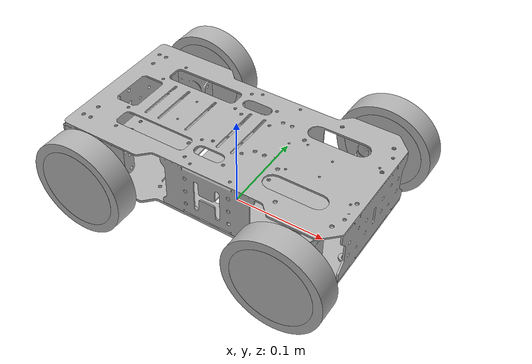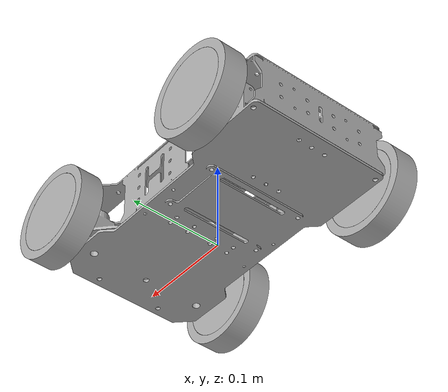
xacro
<?xml version="1.0"?>
<robot name="assembly_chasis" xmlns:xacro="http://www.ros.org/wiki/xacro">

  <xacro:include filename="$(find jetrover_description)/urdf/acker/materials.xacro" />
  <xacro:include filename="$(find jetrover_description)/urdf/acker/assembly_chasis.ros2control" />
  <xacro:include filename="$(find jetrover_description)/urdf/acker/assembly_chasis.gazebo" />
  <link name="base_link">
    <inertial>
      <origin xyz="-0.006798258215834958 0.0012157481048894814 0.03342103979861439" rpy="0 0 0" />
      <mass value="1.1948281829220548" />
      <inertia ixx="0.003173" iyy="0.010286" izz="0.013229" ixy="0.000139" iyz="-3.2e-05"
        ixz="0.000327" />
    </inertial>
    <visual>
      <origin xyz="0 0 0" rpy="0 0 0" />
      <geometry>
        <mesh filename="file://$(find jetrover_description)/meshes/acker/base_link.stl"
          scale="0.001 0.001 0.001" />
      </geometry>
      <material name="silver" />
    </visual>
    <collision>
      <origin xyz="0 0 0" rpy="0 0 0" />
      <geometry>
        <mesh filename="file://$(find jetrover_description)/meshes/acker/base_link.stl"
          scale="0.001 0.001 0.001" />
      </geometry>
    </collision>
  </link>

  <link name="base_green_link_1">
    <inertial>
      <origin xyz="-0.139137 -0.036613 -0.031235" rpy="0 0 0" />
      <mass value="0.0" />
      <inertia ixx="0.0" iyy="0.0" izz="0.0" ixy="0.0" iyz="0.0" ixz="0.0" />
    </inertial>
    <visual>
      <origin xyz="-0.139137 -0.036613 -0.031235" rpy="0 0 0" />
      <geometry>
        <mesh filename="file://$(find jetrover_description)/meshes/acker/base_green_link_1.stl"
          scale="0.001 0.001 0.001" />
      </geometry>
      <material name="silver" />
    </visual>
    <collision>
      <origin xyz="-0.139137 -0.036613 -0.031235" rpy="0 0 0" />
      <geometry>
        <mesh filename="file://$(find jetrover_description)/meshes/acker/base_green_link_1.stl"
          scale="0.001 0.001 0.001" />
      </geometry>
    </collision>
  </link>

  <link name="front_left_wheel_tire_1">
    <inertial>
      <origin xyz="5.640824710106962e-07 0.012800126968121384 -4.6788513696771616e-07" rpy="0 0 0" />
      <mass value="0.06316889720600809" />
      <inertia ixx="7.1e-05" iyy="0.000134" izz="7.1e-05" ixy="0.0" iyz="-0.0" ixz="-0.0" />
    </inertial>
    <visual>
      <origin xyz="-0.111171 -0.091924 -0.052595" rpy="0 0 0" />
      <geometry>
        <mesh
          filename="file://$(find jetrover_description)/meshes/acker/front_left_wheel_tire_1.stl"
          scale="0.001 0.001 0.001" />
      </geometry>
      <material name="silver" />
    </visual>
    <collision>
      <origin xyz="-0.111171 -0.091924 -0.052595" rpy="0 0 0" />
      <geometry>
        <mesh
          filename="file://$(find jetrover_description)/meshes/acker/front_left_wheel_tire_1.stl"
          scale="0.001 0.001 0.001" />
      </geometry>
    </collision>
  </link>

  <link name="front_left_wheel_link_1">
    <inertial>
      <origin xyz="5.640824710106962e-07 0.012800126968121384 -4.678851369468995e-07" rpy="0 0 0" />
      <mass value="1.0742550415244152" />
      <inertia ixx="0.000516" iyy="0.000914" izz="0.000516" ixy="0.0" iyz="-0.0" ixz="-0.0" />
    </inertial>
    <visual>
      <origin xyz="-0.111171 -0.091924 -0.052595" rpy="0 0 0" />
      <geometry>
        <mesh
          filename="file://$(find jetrover_description)/meshes/acker/front_left_wheel_link_1.stl"
          scale="0.001 0.001 0.001" />
      </geometry>
      <material name="silver" />
    </visual>
    <collision>
      <origin xyz="-0.111171 -0.091924 -0.052595" rpy="0 0 0" />
      <geometry>
        <mesh
          filename="file://$(find jetrover_description)/meshes/acker/front_left_wheel_link_1.stl"
          scale="0.001 0.001 0.001" />
      </geometry>
    </collision>
  </link>

  <link name="front_right_wheel_tire_1">
    <inertial>
      <origin xyz="4.752872217600457e-07 -0.012800057006835924 -3.494061506931212e-07" rpy="0 0 0" />
      <mass value="0.06316889720600809" />
      <inertia ixx="7.1e-05" iyy="0.000134" izz="7.1e-05" ixy="0.0" iyz="0.0" ixz="-0.0" />
    </inertial>
    <visual>
      <origin xyz="-0.111171 0.091924 -0.052595" rpy="0 0 0" />
      <geometry>
        <mesh
          filename="file://$(find jetrover_description)/meshes/acker/front_right_wheel_tire_1.stl"
          scale="0.001 0.001 0.001" />
      </geometry>
      <material name="silver" />
    </visual>
    <collision>
      <origin xyz="-0.111171 0.091924 -0.052595" rpy="0 0 0" />
      <geometry>
        <mesh
          filename="file://$(find jetrover_description)/meshes/acker/front_right_wheel_tire_1.stl"
          scale="0.001 0.001 0.001" />
      </geometry>
    </collision>
  </link>

  <link name="front_right_wheel_link_1">
    <inertial>
      <origin xyz="4.752872217600457e-07 -0.012800057006835924 -3.494061506723045e-07" rpy="0 0 0" />
      <mass value="1.0742550415244152" />
      <inertia ixx="0.000516" iyy="0.000914" izz="0.000516" ixy="0.0" iyz="-0.0" ixz="0.0" />
    </inertial>
    <visual>
      <origin xyz="-0.111171 0.091924 -0.052595" rpy="0 0 0" />
      <geometry>
        <mesh
          filename="file://$(find jetrover_description)/meshes/acker/front_right_wheel_link_1.stl"
          scale="0.001 0.001 0.001" />
      </geometry>
      <material name="silver" />
    </visual>
    <collision>
      <origin xyz="-0.111171 0.091924 -0.052595" rpy="0 0 0" />
      <geometry>
        <mesh
          filename="file://$(find jetrover_description)/meshes/acker/front_right_wheel_link_1.stl"
          scale="0.001 0.001 0.001" />
      </geometry>
    </collision>
  </link>

  <link name="rear_left_wheel_tire_1">
    <inertial>
      <origin xyz="-2.748838707072876e-07 0.012800399382812494 2.4570465088219473e-07" rpy="0 0 0" />
      <mass value="0.06316889720600809" />
      <inertia ixx="7.1e-05" iyy="0.000134" izz="7.1e-05" ixy="0.0" iyz="0.0" ixz="0.0" />
    </inertial>
    <visual>
      <origin xyz="0.102098 -0.091924 -0.054235" rpy="0 0 0" />
      <geometry>
        <mesh filename="file://$(find jetrover_description)/meshes/acker/rear_left_wheel_tire_1.stl"
          scale="0.001 0.001 0.001" />
      </geometry>
      <material name="silver" />
    </visual>
    <collision>
      <origin xyz="0.102098 -0.091924 -0.054235" rpy="0 0 0" />
      <geometry>
        <mesh filename="file://$(find jetrover_description)/meshes/acker/rear_left_wheel_tire_1.stl"
          scale="0.001 0.001 0.001" />
      </geometry>
    </collision>
  </link>

  <link name="rear_left_wheel_link_1">
    <inertial>
      <origin xyz="-2.748838707072876e-07 0.012800399382812494 2.457046509030114e-07" rpy="0 0 0" />
      <mass value="1.0742550415244152" />
      <inertia ixx="0.000516" iyy="0.000914" izz="0.000516" ixy="0.0" iyz="0.0" ixz="0.0" />
    </inertial>
    <visual>
      <origin xyz="0.102098 -0.091924 -0.054235" rpy="0 0 0" />
      <geometry>
        <mesh filename="file://$(find jetrover_description)/meshes/acker/rear_left_wheel_link_1.stl"
          scale="0.001 0.001 0.001" />
      </geometry>
      <material name="silver" />
    </visual>
    <collision>
      <origin xyz="0.102098 -0.091924 -0.054235" rpy="0 0 0" />
      <geometry>
        <mesh filename="file://$(find jetrover_description)/meshes/acker/rear_left_wheel_link_1.stl"
          scale="0.001 0.001 0.001" />
      </geometry>
    </collision>
  </link>

  <link name="rear_right_wheel_tire_1">
    <inertial>
      <origin xyz="-2.748838707072876e-07 -0.012800060845091277 2.4570465088219473e-07" rpy="0 0 0" />
      <mass value="0.06316889720600809" />
      <inertia ixx="7.1e-05" iyy="0.000134" izz="7.1e-05" ixy="0.0" iyz="0.0" ixz="0.0" />
    </inertial>
    <visual>
      <origin xyz="0.102098 0.091924 -0.054235" rpy="0 0 0" />
      <geometry>
        <mesh
          filename="file://$(find jetrover_description)/meshes/acker/rear_right_wheel_tire_1.stl"
          scale="0.001 0.001 0.001" />
      </geometry>
      <material name="silver" />
    </visual>
    <collision>
      <origin xyz="0.102098 0.091924 -0.054235" rpy="0 0 0" />
      <geometry>
        <mesh
          filename="file://$(find jetrover_description)/meshes/acker/rear_right_wheel_tire_1.stl"
          scale="0.001 0.001 0.001" />
      </geometry>
    </collision>
  </link>

  <link name="rear_right_wheel_link_1">
    <inertial>
      <origin xyz="-2.748838707072876e-07 -0.012800060845091277 2.457046509030114e-07" rpy="0 0 0" />
      <mass value="1.0742550415244152" />
      <inertia ixx="0.000516" iyy="0.000914" izz="0.000516" ixy="0.0" iyz="0.0" ixz="0.0" />
    </inertial>
    <visual>
      <origin xyz="0.102098 0.091924 -0.054235" rpy="0 0 0" />
      <geometry>
        <mesh
          filename="file://$(find jetrover_description)/meshes/acker/rear_right_wheel_link_1.stl"
          scale="0.001 0.001 0.001" />
      </geometry>
      <material name="silver" />
    </visual>
    <collision>
      <origin xyz="0.102098 0.091924 -0.054235" rpy="0 0 0" />
      <geometry>
        <mesh
          filename="file://$(find jetrover_description)/meshes/acker/rear_right_wheel_link_1.stl"
          scale="0.001 0.001 0.001" />
      </geometry>
    </collision>
  </link>

  <link name="front_left_sterring_link_1">
    <inertial>
      <origin xyz="-0.0040465918921842176 0.006035056500165253 0.019363639865389158" rpy="0 0 0" />
      <mass value="0.07976552705950153" />
      <inertia ixx="1.9e-05" iyy="2.2e-05" izz="2.6e-05" ixy="-4e-06" iyz="-1e-06" ixz="-3e-06" />
    </inertial>
    <visual>
      <origin xyz="-0.111232 -0.063683 -0.031235" rpy="0 0 0" />
      <geometry>
        <mesh
          filename="file://$(find jetrover_description)/meshes/acker/front_left_sterring_link_1.stl"
          scale="0.001 0.001 0.001" />
      </geometry>
      <material name="silver" />
    </visual>
    <collision>
      <origin xyz="-0.111232 -0.063683 -0.031235" rpy="0 0 0" />
      <geometry>
        <mesh
          filename="file://$(find jetrover_description)/meshes/acker/front_left_sterring_link_1.stl"
          scale="0.001 0.001 0.001" />
      </geometry>
    </collision>
  </link>

  <link name="front_right_steering_link_1">
    <inertial>
      <origin xyz="-0.004058391449346527 -0.006054828705959386 0.019322305399745048" rpy="0 0 0" />
      <mass value="0.07950209290283795" />
      <inertia ixx="1.9e-05" iyy="2.2e-05" izz="2.6e-05" ixy="4e-06" iyz="1e-06" ixz="-3e-06" />
    </inertial>
    <visual>
      <origin xyz="-0.111232 0.063683 -0.031235" rpy="0 0 0" />
      <geometry>
        <mesh
          filename="file://$(find jetrover_description)/meshes/acker/front_right_steering_link_1.stl"
          scale="0.001 0.001 0.001" />
      </geometry>
      <material name="silver" />
    </visual>
    <collision>
      <origin xyz="-0.111232 0.063683 -0.031235" rpy="0 0 0" />
      <geometry>
        <mesh
          filename="file://$(find jetrover_description)/meshes/acker/front_right_steering_link_1.stl"
          scale="0.001 0.001 0.001" />
      </geometry>
    </collision>
  </link>

  <joint name="Rigid 1" type="fixed">
    <origin xyz="0.139137 0.036613 0.031235" rpy="0 0 0" />
    <parent link="base_link" />
    <child link="base_green_link_1" />
  </joint>

  <joint name="front_left_wheel_tire_rigid" type="fixed">
    <origin xyz="0.0 0.0 0.0" rpy="0 0 0" />
    <parent link="front_left_wheel_link_1" />
    <child link="front_left_wheel_tire_1" />
  </joint>

  <joint name="front_left_wheel_joint" type="continuous">
    <origin xyz="-6.1e-05 0.028241 0.02136" rpy="0 0 0" />
    <parent link="front_left_sterring_link_1" />
    <child link="front_left_wheel_link_1" />
    <axis xyz="-7e-06 1.0 9e-06" />
  </joint>

  <joint name="front_right_wheel_tire_rigid" type="fixed">
    <origin xyz="0.0 0.0 0.0" rpy="0 0 0" />
    <parent link="front_right_wheel_link_1" />
    <child link="front_right_wheel_tire_1" />
  </joint>

  <joint name="front_right_wheel_joint" type="continuous">
    <origin xyz="-6.1e-05 -0.028241 0.02136" rpy="0 0 0" />
    <parent link="front_right_steering_link_1" />
    <child link="front_right_wheel_link_1" />
    <axis xyz="0.0 1.0 0.0" />
  </joint>

  <joint name="rear_left_wheel_tire_rigid" type="fixed">
    <origin xyz="0.0 0.0 0.0" rpy="0 0 0" />
    <parent link="rear_left_wheel_link_1" />
    <child link="rear_left_wheel_tire_1" />
  </joint>

  <joint name="rear_left_wheel_joint" type="continuous">
    <origin xyz="-0.102098 0.091924 0.054235" rpy="0 0 0" />
    <parent link="base_link" />
    <child link="rear_left_wheel_link_1" />
    <axis xyz="0.0 1.0 0.0" />
  </joint>

  <joint name="rear_right_wheel_tire_rigid" type="fixed">
    <origin xyz="0.0 0.0 0.0" rpy="0 0 0" />
    <parent link="rear_right_wheel_link_1" />
    <child link="rear_right_wheel_tire_1" />
  </joint>

  <joint name="rear_right_wheel_joint" type="continuous">
    <origin xyz="-0.102098 -0.091924 0.054235" rpy="0 0 0" />
    <parent link="base_link" />
    <child link="rear_right_wheel_link_1" />
    <axis xyz="-0.0 1.0 0.0" />
  </joint>

  <joint name="front_left_steering_joint" type="revolute">
    <origin xyz="0.111232 0.063683 0.031235" rpy="0 0 0" />
    <parent link="base_link" />
    <child link="front_left_sterring_link_1" />
    <axis xyz="0.0 0.0 1.0" />
    <limit upper="-0.401426" lower="0.401426" effort="100" velocity="100" />
  </joint>

  <joint name="front_right_steering_joint" type="revolute">
    <origin xyz="0.111232 -0.063683 0.031235" rpy="0 0 0" />
    <parent link="base_link" />
    <child link="front_right_steering_link_1" />
    <axis xyz="0.0 0.0 1.0" />
    <limit upper="-0.401426" lower="0.401426" effort="100" velocity="100" />
  </joint>

</robot>

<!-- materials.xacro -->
<robot name="assembly_chasis" xmlns:xacro="http://www.ros.org/wiki/xacro" >

<material name="silver">
  <color rgba="0.700 0.700 0.700 1.000"/>
</material>

</robot>

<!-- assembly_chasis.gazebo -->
<robot name="assembly_chasis" xmlns:xacro="http://www.ros.org/wiki/xacro">

  <xacro:property name="body_color" value="Gazebo/Silver" />

  <gazebo reference="base_link">
    <material>${body_color}</material>
    <mu1>0.2</mu1>
    <mu2>0.2</mu2>
    <self_collide>true</self_collide>
    <gravity>true</gravity>
  </gazebo>

  <gazebo reference="base_green_link_1">
    <material>${body_color}</material>
    <mu1>0.2</mu1>
    <mu2>0.2</mu2>
    <self_collide>true</self_collide>
  </gazebo>

  <gazebo reference="front_left_wheel_tire_1">
    <material>${body_color}</material>
    <mu1>0.2</mu1>
    <mu2>0.2</mu2>
    <self_collide>true</self_collide>
  </gazebo>

  <gazebo reference="front_left_wheel_link_1">
    <material>${body_color}</material>
    <mu1>0.2</mu1>
    <mu2>0.2</mu2>
    <self_collide>true</self_collide>
  </gazebo>

  <gazebo reference="front_right_wheel_tire_1">
    <material>${body_color}</material>
    <mu1>0.2</mu1>
    <mu2>0.2</mu2>
    <self_collide>true</self_collide>
  </gazebo>

  <gazebo reference="front_right_wheel_link_1">
    <material>${body_color}</material>
    <mu1>0.2</mu1>
    <mu2>0.2</mu2>
    <self_collide>true</self_collide>
  </gazebo>

  <gazebo reference="rear_left_wheel_tire_1">
    <material>${body_color}</material>
    <mu1>0.2</mu1>
    <mu2>0.2</mu2>
    <self_collide>true</self_collide>
  </gazebo>

  <gazebo reference="rear_left_wheel_link_1">
    <material>${body_color}</material>
    <mu1>0.2</mu1>
    <mu2>0.2</mu2>
    <self_collide>true</self_collide>
  </gazebo>

  <gazebo reference="rear_right_wheel_tire_1">
    <material>${body_color}</material>
    <mu1>0.2</mu1>
    <mu2>0.2</mu2>
    <self_collide>true</self_collide>
  </gazebo>

  <gazebo reference="rear_right_wheel_link_1">
    <material>${body_color}</material>
    <mu1>0.2</mu1>
    <mu2>0.2</mu2>
    <self_collide>true</self_collide>
  </gazebo>

  <gazebo reference="front_left_sterring_link_1">
    <material>${body_color}</material>
    <mu1>0.2</mu1>
    <mu2>0.2</mu2>
    <self_collide>true</self_collide>
  </gazebo>

  <gazebo reference="front_right_steering_link_1">
    <material>${body_color}</material>
    <mu1>0.2</mu1>
    <mu2>0.2</mu2>
    <self_collide>true</self_collide>
  </gazebo>

</robot>
